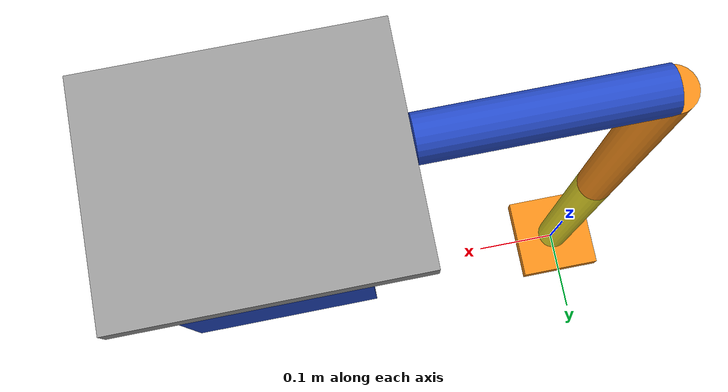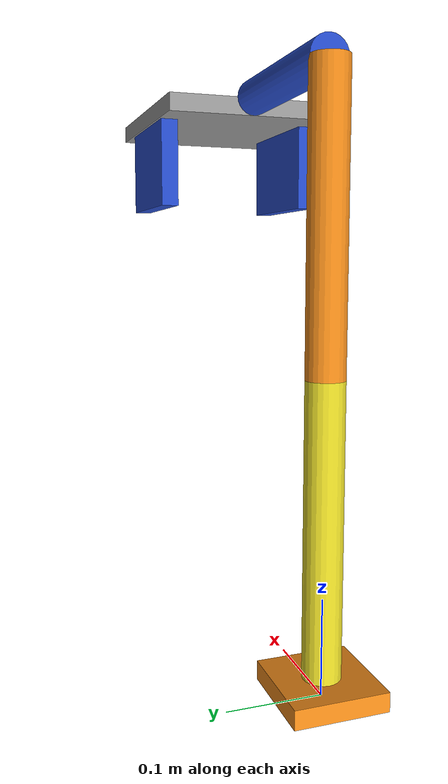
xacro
<?xml version="1.0"?>
<robot name="my_robot" xmlns:xacro="http://wwww.ros.org/wiki/xacro" >

    <xacro:include filename="/home/aman/ros2_ws/src/my_robot_description/urdf/common_property.xacro" />
    <xacro:include filename="/home/aman/ros2_ws/src/my_robot_description/urdf/arm.xacro" />
    <xacro:include filename="/home/aman/ros2_ws/src/my_robot_description/urdf/arm_gazebo.xacro" />

</robot>

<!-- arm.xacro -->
<robot xmlns:xacro="http://www.ros.org/wiki/xacro">

    <xacro:property name="arm_base_length" value="0.1" />
    <xacro:property name="arm_base_width" value="0.1" />
    <xacro:property name="arm_base_height" value="0.02" />
    <xacro:property name="forearm_radius" value="0.02" />
    <xacro:property name="forearm_length" value="0.3" />
    <xacro:property name="hand_radius" value="0.02" />
    <xacro:property name="hand_length" value="0.3" />
    <xacro:property name="gripper_arm_radius" value="0.02" />
    <xacro:property name="gripper_arm_length" value="0.2" />
    <xacro:property name="gripper_base_length" value="0.25" />
    <xacro:property name="gripper_base_width" value="0.2" />
    <xacro:property name="gripper_base_height" value="0.02" />
    <xacro:property name="finger_length" value="0.15" />
    <xacro:property name="finger_width" value="0.1" />
    <xacro:property name="finger_height" value="0.02" />

    <link name="arm_base_link">
        <visual>
            <geometry>
                <box size="${arm_base_length} ${arm_base_width} ${arm_base_height}" />
            </geometry>
            <origin xyz="0 0 ${arm_base_height / 2.0}" rpy="0 0 0" />
            <material name="orange" />
        </visual>
        <collision>
            <geometry>
                <box size="${arm_base_length} ${arm_base_width} ${arm_base_height}" />
            </geometry>
            <origin xyz="0 0 ${arm_base_height / 2.0}" rpy="0 0 0" />
        </collision>
        <xacro:box_inertia m="0.5" x="${arm_base_length}" y="${arm_base_width}" z="${arm_base_height}"
                           o_xyz="0 0 ${arm_base_height / 2.0}" o_rpy="0 0 0" />
    </link>

    <link name="forearm_link">
        <visual>
            <geometry>
                <cylinder radius="${forearm_radius}" length="${forearm_length}" />
            </geometry>
            <origin xyz="0 0 ${forearm_length / 2.0}" rpy="0 0 0" />
            <material name="yellow" />
        </visual>
        <collision>
            <geometry>
                <cylinder radius="${forearm_radius}" length="${forearm_length}" />
            </geometry>
            <origin xyz="0 0 ${forearm_length / 2.0}" rpy="0 0 0" />
        </collision>
        <xacro:cylinder_inertia m="0.3" r="${forearm_radius}" l="${forearm_length}"
                                o_xyz="0 0 ${forearm_length / 2.0}" o_rpy="0 0 0" />
    </link>

    <link name="hand_link">
        <visual>
            <geometry>
                <cylinder radius="${hand_radius}" length="${hand_length}" />
            </geometry>
            <origin xyz="0 0 ${hand_length / 2.0}" rpy="0 0 0" />
            <material name="orange" />
        </visual>
        <collision>
            <geometry>
                <cylinder radius="${hand_radius}" length="${hand_length}" />
            </geometry>
            <origin xyz="0 0 ${hand_length / 2.0}" rpy="0 0 0" />
        </collision>
        <xacro:cylinder_inertia m="0.3" r="${hand_radius}" l="${hand_length}"
                                o_xyz="0 0 ${hand_length / 2.0}" o_rpy="0 0 0" />
    </link>

    <link name="gripper_arm_link">
        <visual>
            <geometry>
                <cylinder radius="${gripper_arm_radius}" length="${gripper_arm_length}" />
            </geometry>
            <origin xyz="${gripper_arm_length / 2.0} 0 0" rpy="0 ${pi / 2.0} 0" />
            <material name="blue" />
        </visual>
        <collision>
            <geometry>
                <cylinder radius="${gripper_arm_radius}" length="${gripper_arm_length}" />
            </geometry>
            <origin xyz="${gripper_arm_length / 2.0} 0 0" rpy="0 ${pi / 2.0} 0" />
        </collision>
        <xacro:cylinder_inertia m="0.15" r="${gripper_arm_radius}" l="${gripper_arm_length}"
                                o_xyz="${gripper_arm_length / 2.0} 0 0" o_rpy="0 ${pi / 2.0} 0" />
    </link>

    <link name="gripper_base_link">
        <visual>
            <geometry>
                <box size="${gripper_base_length} ${gripper_base_width} ${gripper_base_height}" />
            </geometry>
            <origin xyz="${gripper_base_length / 2.0} 0 ${- gripper_base_height / 2.0}" rpy="0 0 0" />
            <material name="grey" />
        </visual>
        <collision>
            <geometry>
                <box size="${gripper_base_length} ${gripper_base_width} ${gripper_base_height}" />
            </geometry>
            <origin xyz="${gripper_base_length / 2.0} 0 ${- gripper_base_height / 2.0}" rpy="0 0 0" />
        </collision>
        <xacro:box_inertia m="0.25" x="${gripper_base_length}" y="${gripper_base_width}" z="${gripper_base_height}"
                           o_xyz="${gripper_base_length / 2.0} 0 ${- gripper_base_height / 2.0}" o_rpy="0 0 0" />
    </link>

    <link name="finger_right_link">
        <visual>
            <geometry>
                <box size="${finger_length} ${finger_width} ${finger_height}" />
            </geometry>
            <origin xyz="0 0 ${- finger_width / 2.0}" rpy="${pi / 2.0} 0 0" />
            <material name="blue" />
        </visual>
        <collision>
            <geometry>
                <box size="${finger_length} ${finger_width} ${finger_height}" />
            </geometry>
            <origin xyz="0 0 ${- finger_width / 2.0}" rpy="${pi / 2.0} 0 0" />
        </collision>
        <xacro:box_inertia m="0.08" x="${finger_length}" y="${finger_width}" z="${finger_height}"
                           o_xyz="0 0 ${- finger_width / 2.0}" o_rpy="${pi / 2.0} 0 0" />
    </link>

    <link name="finger_left_link">
        <visual>
            <geometry>
                <box size="${finger_length} ${finger_width} ${finger_height}" />
            </geometry>
            <origin xyz="0 0 ${- finger_width / 2.0}" rpy="${pi / 2.0} 0 0" />
            <material name="blue" />
        </visual>
        <collision>
            <geometry>
                <box size="${finger_length} ${finger_width} ${finger_height}" />
            </geometry>
            <origin xyz="0 0 ${- finger_width / 2.0}" rpy="${pi / 2.0} 0 0" />
        </collision>
        <xacro:box_inertia m="0.08" x="${finger_length}" y="${finger_width}" z="${finger_height}"
                           o_xyz="0 0 ${- finger_width / 2.0}" o_rpy="${pi / 2.0} 0 0" />
    </link>

    <joint name="arm_base_forearm_joint" type="revolute">
        <parent link="arm_base_link" />
        <child link="forearm_link" />
        <origin xyz="0 0 ${arm_base_height}" rpy="0 0 0" />
        <axis xyz="0 1 0" />
        <limit lower="${- pi/2}" upper="${pi/2}" effort="100" velocity="100" />
        <dynamics friction="1.0" damping="5.0" />
    </joint>

    <joint name="forearm_hand_joint" type="revolute">
        <parent link="forearm_link" />
        <child link="hand_link" />
        <origin xyz="0 0 ${forearm_length}" rpy="0 0 0" />
        <axis xyz="0 1 0" />
        <limit lower="${- pi/2}" upper="${pi/2}" effort="100" velocity="100" />
        <dynamics friction="1.0" damping="5.0" />
    </joint>

    <joint name="hand_gripper_arm_joint" type="revolute">
        <parent link="hand_link" />
        <child link="gripper_arm_link" />
        <origin xyz="0 0 ${hand_length}" rpy="0 0 0" />
        <axis xyz="0 1 0" />
        <limit lower="${- pi/2}" upper="${pi/2}" effort="100" velocity="100" />
        <dynamics friction="1.0" damping="3.0" />
    </joint>

    <joint name="gripper_arm_base_joint" type="revolute">
        <parent link="gripper_arm_link" />
        <child link="gripper_base_link" />
        <origin xyz="${gripper_arm_length} 0 0" rpy="0 0 0" />
        <axis xyz="0 1 0" />
        <limit lower="${- pi/2}" upper="${pi/2}" effort="100" velocity="100" />
        <dynamics friction="1.0" damping="3.0" />
    </joint>

    <joint name="gripper_base_finger_right_joint" type="prismatic">
        <parent link="gripper_base_link" />
        <child link="finger_right_link" />
        <origin xyz="${gripper_base_length / 2.0} 0.0875 ${- gripper_arm_radius / 2.0 - gripper_base_height / 2.0}" rpy="0 0 0" />
        <axis xyz="0 -1 0" />
        <limit lower="0" upper="0.04" effort="100" velocity="100" />
        <dynamics friction="1.0" damping="5.0" />
    </joint>

    <joint name="gripper_base_finger_left_joint" type="prismatic">
        <parent link="gripper_base_link" />
        <child link="finger_left_link" />
        <origin xyz="${gripper_base_length / 2.0} -0.0875 ${- gripper_arm_radius / 2.0 - gripper_base_height / 2.0}" rpy="0 0 0" />
        <axis xyz="0 1 0" />
        <limit lower="0" upper="0.04" effort="100" velocity="100" />
        <dynamics friction="1.0" damping="5.0" />
    </joint>

</robot>
